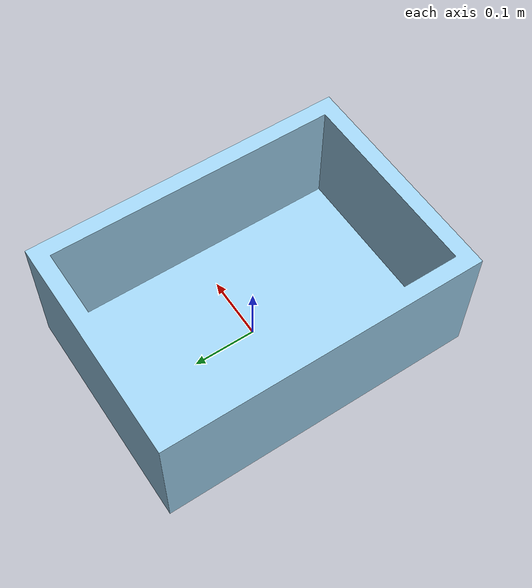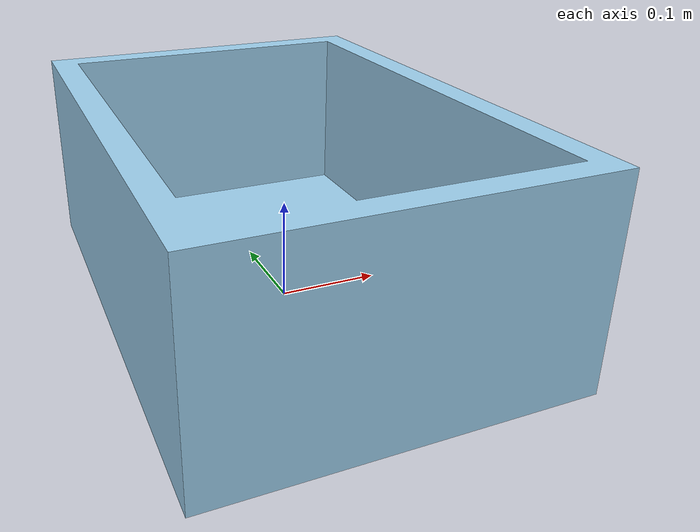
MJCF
<mujoco model="bucket">
  <default>
    <default class="visual">
      <geom group="2" type="mesh" contype="0" conaffinity="0"/>
    </default>
    <default class="collision">
      <geom group="3" type="mesh"/>
    </default>
  </default>
  <asset>
    <material name="0.615686_0.811765_0.929412_0.000000_0.000000" specular="0.0" shininess="0.0" rgba="0.6157 0.8118 0.9294 1"/>
    <mesh file="bucket.obj"/>
    <mesh file="bucket_collision_0.obj"/>
    <mesh file="bucket_collision_1.obj"/>
    <mesh file="bucket_collision_2.obj"/>
    <mesh file="bucket_collision_3.obj"/>
    <mesh file="bucket_collision_4.obj"/>
    <mesh file="bucket_collision_5.obj"/>
    <mesh file="bucket_collision_6.obj"/>
    <mesh file="bucket_collision_7.obj"/>
    <mesh file="bucket_collision_8.obj"/>
    <mesh file="bucket_collision_9.obj"/>
    <mesh file="bucket_collision_10.obj"/>
    <mesh file="bucket_collision_11.obj"/>
    <mesh file="bucket_collision_12.obj"/>
  </asset>
  <worldbody>
    <body name="bucket">
      <freejoint/>
      <geom material="0.615686_0.811765_0.929412_0.000000_0.000000" mesh="bucket" class="visual"/>
      <geom mesh="bucket_collision_0" rgba="0.8249282579077267 0.15762376798704525 0.6538264202432827 1" class="collision"/>
      <geom mesh="bucket_collision_1" rgba="0.6827466861398804 0.896268579726999 0.4822704752668483 1" class="collision"/>
      <geom mesh="bucket_collision_2" rgba="0.584189877843041 0.17022316436594376 0.738842585584954 1" class="collision"/>
      <geom mesh="bucket_collision_3" rgba="0.009990745066804196 0.9550502672836646 0.5888020736775097 1" class="collision"/>
      <geom mesh="bucket_collision_4" rgba="0.02506827161005709 0.8522361304518492 0.41577627581484733 1" class="collision"/>
      <geom mesh="bucket_collision_5" rgba="0.7520804541001267 0.8328374818493562 0.5218435999194657 1" class="collision"/>
      <geom mesh="bucket_collision_6" rgba="0.6209480217165397 0.21414589224161973 0.25093188767463837 1" class="collision"/>
      <geom mesh="bucket_collision_7" rgba="0.052607682402363354 0.10327467879401453 0.4127182670139731 1" class="collision"/>
      <geom mesh="bucket_collision_8" rgba="0.5612692798655936 0.42814787262675547 0.4236628153679415 1" class="collision"/>
      <geom mesh="bucket_collision_9" rgba="0.2819815002601306 0.5582644762694388 0.664824327084998 1" class="collision"/>
      <geom mesh="bucket_collision_10" rgba="0.638818487354521 0.6485104037646133 0.507831867568061 1" class="collision"/>
      <geom mesh="bucket_collision_11" rgba="0.8028646269302568 0.34262563606772123 0.7655750432876075 1" class="collision"/>
      <geom mesh="bucket_collision_12" rgba="0.5729887477148071 0.12532491703996962 0.04969916992941348 1" class="collision"/>
    </body>
  </worldbody>
</mujoco>
